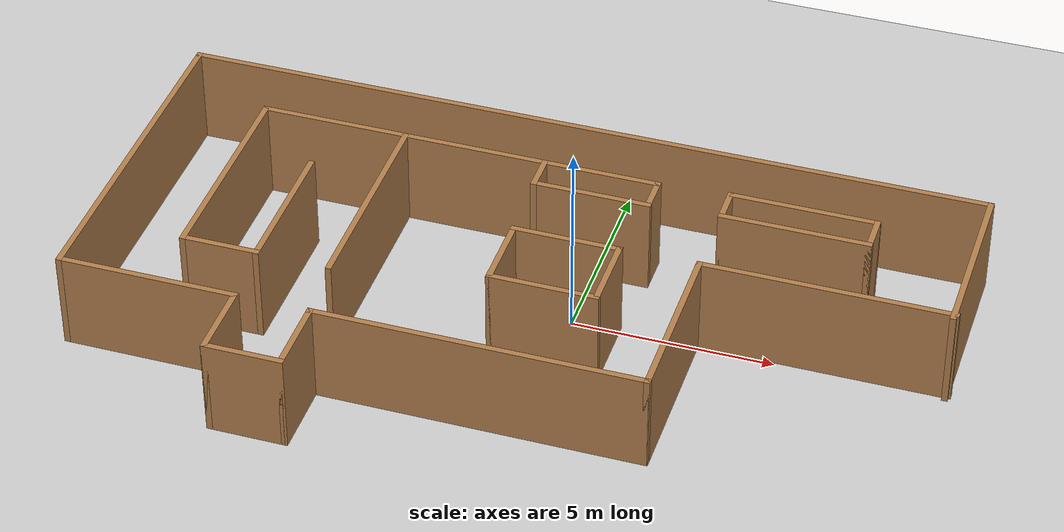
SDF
<sdf version="1.7">
 <world name="default">
  <light name="sun" type="directional">
   <pose>0 0 10 0 -0 0</pose>
   <diffuse>0.8 0.8 0.8 1</diffuse>
   <specular>0.2 0.2 0.2 1</specular>
   <attenuation>
    <range>1000</range>
    <constant>0.9</constant>
    <linear>0.01</linear>
    <quadratic>0.001</quadratic>
   </attenuation>
   <direction>-0.5 0.1 -0.9</direction>
   <spot><inner_angle>0</inner_angle><outer_angle>0</outer_angle><falloff>0</falloff></spot>
  </light>
  <model name="ground_plane">
   <static>1</static>
   <link name="link">
    <collision name="collision">
     <geometry><plane><normal>0 0 1</normal><size>100 100</size></plane></geometry>
     <surface>
      <contact><collide_bitmask>65535</collide_bitmask></contact>
      <friction><ode><mu>100</mu><mu2>50</mu2></ode></friction>
     </surface>
    </collision>
    <visual name="visual">
     <cast_shadows>0</cast_shadows>
     <geometry><plane><normal>0 0 1</normal><size>100 100</size></plane></geometry>
     <material>
      <script><uri>file://media/materials/scripts/gazebo.material</uri><name>Gazebo/Grey</name></script>
     </material>
    </visual>
   </link>
  </model>
  <gravity>0 0 -9.8</gravity>
  <magnetic_field>6e-06 2.3e-05 -4.2e-05</magnetic_field>
  <atmosphere type="adiabatic"/>
  <physics name="default_physics" default="0" type="ode">
   <max_step_size>0.001</max_step_size>
   <real_time_factor>1</real_time_factor>
   <real_time_update_rate>1000</real_time_update_rate>
  </physics>
  <scene><ambient>0.4 0.4 0.4 1</ambient><background>0.7 0.7 0.7 1</background><shadows>1</shadows></scene>
  <audio><device>default</device></audio>
  <spherical_coordinates>
   <surface_model>EARTH_WGS84</surface_model>
   <latitude_deg>0</latitude_deg>
   <longitude_deg>0</longitude_deg>
   <elevation>0</elevation>
   <heading_deg>0</heading_deg>
  </spherical_coordinates>
  <model name="dans_basic_maze">
   <pose>-1.05323 -0.832402 0 0 -0 0</pose>
   <link name="Wall_0">
    <collision name="Wall_0_Collision">
     <geometry><box><size>5.5 0.15 2.5</size></box></geometry>
     <pose>0 0 1.25 0 -0 0</pose>
    </collision>
    <visual name="Wall_0_Visual">
     <pose>0 0 1.25 0 -0 0</pose>
     <geometry><box><size>5.5 0.15 2.5</size></box></geometry>
     <material>
      <script><uri>file://media/materials/scripts/gazebo.material</uri><name>Gazebo/Wood</name></script>
      <ambient>1 1 1 1</ambient>
     </material>
     <meta><layer>0</layer></meta>
    </visual>
    <pose>-7.75378 0.921526 0 0 -0 1.5708</pose>
   </link>
   <link name="Wall_1">
    <collision name="Wall_1_Collision">
     <geometry><box><size>10.25 0.15 2.5</size></box></geometry>
     <pose>0 0 1.25 0 -0 0</pose>
    </collision>
    <visual name="Wall_1_Visual">
     <pose>0 0 1.25 0 -0 0</pose>
     <geometry><box><size>10.25 0.15 2.5</size></box></geometry>
     <material>
      <script><uri>file://media/materials/scripts/gazebo.material</uri><name>Gazebo/Wood</name></script>
      <ambient>1 1 1 1</ambient>
     </material>
     <meta><layer>0</layer></meta>
    </visual>
    <pose>-2.70378 3.59653 0 0 -0 0</pose>
   </link>
   <link name="Wall_11">
    <collision name="Wall_11_Collision">
     <geometry><box><size>5.5 0.15 2.5</size></box></geometry>
     <pose>0 0 1.25 0 -0 0</pose>
    </collision>
    <visual name="Wall_11_Visual">
     <pose>0 0 1.25 0 -0 0</pose>
     <geometry><box><size>5.5 0.15 2.5</size></box></geometry>
     <material>
      <script><uri>file://media/materials/scripts/gazebo.material</uri><name>Gazebo/Wood</name></script>
      <ambient>1 1 1 1</ambient>
     </material>
     <meta><layer>0</layer></meta>
    </visual>
    <pose>-4.08824 0.913758 0 0 -0 -1.5708</pose>
   </link>
   <link name="Wall_13">
    <collision name="Wall_13_Collision">
     <geometry><box><size>2.75 0.15 2.5</size></box></geometry>
     <pose>0 0 1.25 0 -0 0</pose>
    </collision>
    <visual name="Wall_13_Visual">
     <pose>0 0 1.25 0 -0 0</pose>
     <geometry><box><size>2.75 0.15 2.5</size></box></geometry>
     <material>
      <script><uri>file://media/materials/scripts/gazebo.material</uri><name>Gazebo/Wood</name></script>
      <ambient>1 1 1 1</ambient>
     </material>
     <meta><layer>0</layer></meta>
    </visual>
    <pose>0.866401 0.928739 0 0 -0 0</pose>
   </link>
   <link name="Wall_14">
    <collision name="Wall_14_Collision">
     <geometry><box><size>2 0.15 2.5</size></box></geometry>
     <pose>0 0 1.25 0 -0 0</pose>
    </collision>
    <visual name="Wall_14_Visual">
     <pose>0 0 1.25 0 -0 0</pose>
     <geometry><box><size>2 0.15 2.5</size></box></geometry>
     <material>
      <script><uri>file://media/materials/scripts/gazebo.material</uri><name>Gazebo/Wood</name></script>
      <ambient>1 1 1 1</ambient>
     </material>
     <meta><layer>0</layer></meta>
    </visual>
    <pose>2.1664 0.003739 0 0 -0 -1.5708</pose>
   </link>
   <link name="Wall_15">
    <collision name="Wall_15_Collision">
     <geometry><box><size>2.75 0.15 2.5</size></box></geometry>
     <pose>0 0 1.25 0 -0 0</pose>
    </collision>
    <visual name="Wall_15_Visual">
     <pose>0 0 1.25 0 -0 0</pose>
     <geometry><box><size>2.75 0.15 2.5</size></box></geometry>
     <material>
      <script><uri>file://media/materials/scripts/gazebo.material</uri><name>Gazebo/Wood</name></script>
      <ambient>1 1 1 1</ambient>
     </material>
     <meta><layer>0</layer></meta>
    </visual>
    <pose>0.866401 -0.921261 0 0 -0 3.14159</pose>
   </link>
   <link name="Wall_16">
    <collision name="Wall_16_Collision">
     <geometry><box><size>2 0.15 2.5</size></box></geometry>
     <pose>0 0 1.25 0 -0 0</pose>
    </collision>
    <visual name="Wall_16_Visual">
     <pose>0 0 1.25 0 -0 0</pose>
     <geometry><box><size>2 0.15 2.5</size></box></geometry>
     <material>
      <script><uri>file://media/materials/scripts/gazebo.material</uri><name>Gazebo/Wood</name></script>
      <ambient>1 1 1 1</ambient>
     </material>
     <meta><layer>0</layer></meta>
    </visual>
    <pose>-0.433599 0.003739 0 0 -0 1.5708</pose>
   </link>
   <link name="Wall_18">
    <collision name="Wall_18_Collision">
     <geometry><box><size>1 0.15 2.5</size></box></geometry>
     <pose>0 0 1.25 0 -0 0</pose>
    </collision>
    <visual name="Wall_18_Visual">
     <pose>0 0 1.25 0 -0 0</pose>
     <geometry><box><size>1 0.15 2.5</size></box></geometry>
     <material>
      <script><uri>file://media/materials/scripts/gazebo.material</uri><name>Gazebo/Wood</name></script>
      <ambient>1 1 1 1</ambient>
     </material>
     <meta><layer>0</layer></meta>
    </visual>
    <pose>4.12313 3.30254 0 0 -0 -1.5708</pose>
   </link>
   <link name="Wall_19">
    <collision name="Wall_19_Collision">
     <geometry><box><size>3.75 0.15 2.5</size></box></geometry>
     <pose>0 0 1.25 0 -0 0</pose>
    </collision>
    <visual name="Wall_19_Visual">
     <pose>0 0 1.25 0 -0 0</pose>
     <geometry><box><size>3.75 0.15 2.5</size></box></geometry>
     <material>
      <script><uri>file://media/materials/scripts/gazebo.material</uri><name>Gazebo/Wood</name></script>
      <ambient>1 1 1 1</ambient>
     </material>
     <meta><layer>0</layer></meta>
    </visual>
    <pose>5.92313 2.87754 0 0 -0 0</pose>
   </link>
   <link name="Wall_2">
    <collision name="Wall_2_Collision">
     <geometry><box><size>1 0.15 2.5</size></box></geometry>
     <pose>0 0 1.25 0 -0 0</pose>
    </collision>
    <visual name="Wall_2_Visual">
     <pose>0 0 1.25 0 -0 0</pose>
     <geometry><box><size>1 0.15 2.5</size></box></geometry>
     <material>
      <script><uri>file://media/materials/scripts/gazebo.material</uri><name>Gazebo/Wood</name></script>
      <ambient>1 1 1 1</ambient>
     </material>
     <meta><layer>0</layer></meta>
    </visual>
    <pose>2.34622 3.17153 0 0 -0 -1.5708</pose>
   </link>
   <link name="Wall_20">
    <collision name="Wall_20_Collision">
     <geometry><box><size>1 0.15 2.5</size></box></geometry>
     <pose>0 0 1.25 0 -0 0</pose>
    </collision>
    <visual name="Wall_20_Visual">
     <pose>0 0 1.25 0 -0 0</pose>
     <geometry><box><size>1 0.15 2.5</size></box></geometry>
     <material>
      <script><uri>file://media/materials/scripts/gazebo.material</uri><name>Gazebo/Wood</name></script>
      <ambient>1 1 1 1</ambient>
     </material>
     <meta><layer>0</layer></meta>
    </visual>
    <pose>7.72313 3.30254 0 0 -0 1.5708</pose>
   </link>
   <link name="Wall_21">
    <collision name="Wall_21_Collision">
     <geometry><box><size>3.75 0.15 2.5</size></box></geometry>
     <pose>0 0 1.25 0 -0 0</pose>
    </collision>
    <visual name="Wall_21_Visual">
     <pose>0 0 1.25 0 -0 0</pose>
     <geometry><box><size>3.75 0.15 2.5</size></box></geometry>
     <material>
      <script><uri>file://media/materials/scripts/gazebo.material</uri><name>Gazebo/Wood</name></script>
      <ambient>1 1 1 1</ambient>
     </material>
     <meta><layer>0</layer></meta>
    </visual>
    <pose>5.92313 3.72754 0 0 -0 3.14159</pose>
   </link>
   <link name="Wall_23">
    <collision name="Wall_23_Collision">
     <geometry><box><size>4.5 0.15 2.5</size></box></geometry>
     <pose>0 0 1.25 0 -0 0</pose>
    </collision>
    <visual name="Wall_23_Visual">
     <pose>0 0 1.25 0 -0 0</pose>
     <geometry><box><size>4.5 0.15 2.5</size></box></geometry>
     <material>
      <script><uri>file://media/materials/scripts/gazebo.material</uri><name>Gazebo/Wood</name></script>
      <ambient>1 1 1 1</ambient>
     </material>
     <meta><layer>0</layer></meta>
    </visual>
    <pose>4.1 -1.2 0 0 -0 -1.5708</pose>
   </link>
   <link name="Wall_3">
    <collision name="Wall_3_Collision">
     <geometry><box><size>3 0.15 2.5</size></box></geometry>
     <pose>0 0 1.25 0 -0 0</pose>
    </collision>
    <visual name="Wall_3_Visual">
     <pose>0 0 1.25 0 -0 0</pose>
     <geometry><box><size>3 0.15 2.5</size></box></geometry>
     <material>
      <script><uri>file://media/materials/scripts/gazebo.material</uri><name>Gazebo/Wood</name></script>
      <ambient>1 1 1 1</ambient>
     </material>
     <meta><layer>0</layer></meta>
    </visual>
    <pose>0.92122 2.74653 0 0 -0 3.14159</pose>
   </link>
   <link name="Wall_33">
    <collision name="Wall_33_Collision">
     <geometry><box><size>4.54626 0.15 2.5</size></box></geometry>
     <pose>0 0 1.25 0 -0 0</pose>
    </collision>
    <visual name="Wall_33_Visual">
     <pose>0 0 1.25 0 -0 0</pose>
     <geometry><box><size>4.54626 0.15 2.5</size></box></geometry>
     <material>
      <script><uri>file://media/materials/scripts/gazebo.material</uri><name>Gazebo/Wood</name></script>
      <ambient>1 1 1 1</ambient>
     </material>
     <meta><layer>0</layer></meta>
    </visual>
    <pose>-8.00187 -3.375 0 0 -0 3.14159</pose>
   </link>
   <link name="Wall_34">
    <collision name="Wall_34_Collision">
     <geometry><box><size>8.75 0.15 2.5</size></box></geometry>
     <pose>0 0 1.25 0 -0 0</pose>
    </collision>
    <visual name="Wall_34_Visual">
     <pose>0 0 1.25 0 -0 0</pose>
     <geometry><box><size>8.75 0.15 2.5</size></box></geometry>
     <material>
      <script><uri>file://media/materials/scripts/gazebo.material</uri><name>Gazebo/Wood</name></script>
      <ambient>1 1 1 1</ambient>
     </material>
     <meta><layer>0</layer></meta>
    </visual>
    <pose>-10.2 0.925 0 0 -0 1.5708</pose>
   </link>
   <link name="Wall_35">
    <collision name="Wall_35_Collision">
     <geometry><box><size>20.5 0.15 2.5</size></box></geometry>
     <pose>0 0 1.25 0 -0 0</pose>
    </collision>
    <visual name="Wall_35_Visual">
     <pose>0 0 1.25 0 -0 0</pose>
     <geometry><box><size>20.5 0.15 2.5</size></box></geometry>
     <material>
      <script><uri>file://media/materials/scripts/gazebo.material</uri><name>Gazebo/Wood</name></script>
      <ambient>1 1 1 1</ambient>
     </material>
     <meta><layer>0</layer></meta>
    </visual>
    <pose>-0.025 5.225 0 0 -0 0</pose>
   </link>
   <link name="Wall_36">
    <collision name="Wall_36_Collision">
     <geometry><box><size>4.5 0.15 2.5</size></box></geometry>
     <pose>0 0 1.25 0 -0 0</pose>
    </collision>
    <visual name="Wall_36_Visual">
     <pose>0 0 1.25 0 -0 0</pose>
     <geometry><box><size>4.5 0.15 2.5</size></box></geometry>
     <material>
      <script><uri>file://media/materials/scripts/gazebo.material</uri><name>Gazebo/Wood</name></script>
      <ambient>1 1 1 1</ambient>
     </material>
     <meta><layer>0</layer></meta>
    </visual>
    <pose>10.15 3.05 0 0 -0 -1.5708</pose>
   </link>
   <link name="Wall_38">
    <collision name="Wall_38_Collision">
     <geometry><box><size>6.25 0.15 2.5</size></box></geometry>
     <pose>0 0 1.25 0 -0 0</pose>
    </collision>
    <visual name="Wall_38_Visual">
     <pose>0 0 1.25 0 -0 0</pose>
     <geometry><box><size>6.25 0.15 2.5</size></box></geometry>
     <material>
      <script><uri>file://media/materials/scripts/gazebo.material</uri><name>Gazebo/Wood</name></script>
      <ambient>1 1 1 1</ambient>
     </material>
     <meta><layer>0</layer></meta>
    </visual>
    <pose>7.15 0.975 0 0 -0 0</pose>
   </link>
   <link name="Wall_40">
    <collision name="Wall_40_Collision">
     <geometry><box><size>2 0.15 2.5</size></box></geometry>
     <pose>0 0 1.25 0 -0 0</pose>
    </collision>
    <visual name="Wall_40_Visual">
     <pose>0 0 1.25 0 -0 0</pose>
     <geometry><box><size>2 0.15 2.5</size></box></geometry>
     <material>
      <script><uri>file://media/materials/scripts/gazebo.material</uri><name>Gazebo/Wood</name></script>
      <ambient>1 1 1 1</ambient>
     </material>
     <meta><layer>0</layer></meta>
    </visual>
    <pose>-6.82878 -1.75347 0 0 -0 0</pose>
   </link>
   <link name="Wall_41">
    <collision name="Wall_41_Collision">
     <geometry><box><size>3.75 0.15 2.5</size></box></geometry>
     <pose>0 0 1.25 0 -0 0</pose>
    </collision>
    <visual name="Wall_41_Visual">
     <pose>0 0 1.25 0 -0 0</pose>
     <geometry><box><size>3.75 0.15 2.5</size></box></geometry>
     <material>
      <script><uri>file://media/materials/scripts/gazebo.material</uri><name>Gazebo/Wood</name></script>
      <ambient>1 1 1 1</ambient>
     </material>
     <meta><layer>0</layer></meta>
    </visual>
    <pose>-5.90378 0.046526 0 0 -0 1.5708</pose>
   </link>
   <link name="Wall_43">
    <collision name="Wall_43_Collision">
     <geometry><box><size>2 0.15 2.5</size></box></geometry>
     <pose>0 0 1.25 0 -0 0</pose>
    </collision>
    <visual name="Wall_43_Visual">
     <pose>0 0 1.25 0 -0 0</pose>
     <geometry><box><size>2 0.15 2.5</size></box></geometry>
     <material>
      <script><uri>file://media/materials/scripts/gazebo.material</uri><name>Gazebo/Wood</name></script>
      <ambient>1 1 1 1</ambient>
     </material>
     <meta><layer>0</layer></meta>
    </visual>
    <pose>-5.80374 -4.3 0 0 -0 -1.5708</pose>
   </link>
   <link name="Wall_44">
    <collision name="Wall_44_Collision">
     <geometry><box><size>2 0.15 2.5</size></box></geometry>
     <pose>0 0 1.25 0 -0 0</pose>
    </collision>
    <visual name="Wall_44_Visual">
     <pose>0 0 1.25 0 -0 0</pose>
     <geometry><box><size>2 0.15 2.5</size></box></geometry>
     <material>
      <script><uri>file://media/materials/scripts/gazebo.material</uri><name>Gazebo/Wood</name></script>
      <ambient>1 1 1 1</ambient>
     </material>
     <meta><layer>0</layer></meta>
    </visual>
    <pose>-4.87874 -5.225 0 0 -0 0</pose>
   </link>
   <link name="Wall_45">
    <collision name="Wall_45_Collision">
     <geometry><box><size>2 0.15 2.5</size></box></geometry>
     <pose>0 0 1.25 0 -0 0</pose>
    </collision>
    <visual name="Wall_45_Visual">
     <pose>0 0 1.25 0 -0 0</pose>
     <geometry><box><size>2 0.15 2.5</size></box></geometry>
     <material>
      <script><uri>file://media/materials/scripts/gazebo.material</uri><name>Gazebo/Wood</name></script>
      <ambient>1 1 1 1</ambient>
     </material>
     <meta><layer>0</layer></meta>
    </visual>
    <pose>-3.95374 -4.3 0 0 -0 1.5708</pose>
   </link>
   <link name="Wall_46">
    <collision name="Wall_46_Collision">
     <geometry><box><size>8.20374 0.15 2.5</size></box></geometry>
     <pose>0 0 1.25 0 -0 0</pose>
    </collision>
    <visual name="Wall_46_Visual">
     <pose>0 0 1.25 0 -0 0</pose>
     <geometry><box><size>8.20374 0.15 2.5</size></box></geometry>
     <material>
      <script><uri>file://media/materials/scripts/gazebo.material</uri><name>Gazebo/Wood</name></script>
      <ambient>1 1 1 1</ambient>
     </material>
     <meta><layer>0</layer></meta>
    </visual>
    <pose>0.073131 -3.375 0 0 -0 0</pose>
   </link>
   <link name="Wall_6">
    <collision name="Wall_6_Collision">
     <geometry><box><size>1 0.15 2.5</size></box></geometry>
     <pose>0 0 1.25 0 -0 0</pose>
    </collision>
    <visual name="Wall_6_Visual">
     <pose>0 0 1.25 0 -0 0</pose>
     <geometry><box><size>1 0.15 2.5</size></box></geometry>
     <material>
      <script><uri>file://media/materials/scripts/gazebo.material</uri><name>Gazebo/Wood</name></script>
      <ambient>1 1 1 1</ambient>
     </material>
     <meta><layer>0</layer></meta>
    </visual>
    <pose>-0.50378 3.17153 0 0 -0 1.5708</pose>
   </link>
   <static>1</static>
  </model>
  <model name="pillar_dans_maze_final">
   <link name="link_0">
    <inertial>
     <mass>1</mass>
     <inertia><ixx>0.145833</ixx><ixy>0</ixy><ixz>0</ixz><iyy>0.145833</iyy><iyz>0</iyz><izz>0.125</izz></inertia>
    </inertial>
    <pose>7.65049 0.851072 0 0 -0 0</pose>
    <visual name="visual">
     <geometry><cylinder><radius>0.15</radius><length>1</length></cylinder></geometry>
     <material>
      <lighting>1</lighting>
      <script><uri>file://media/materials/scripts/gazebo.material</uri><name>Gazebo/Grey</name></script>
      <shader type="pixel"><normal_map>__default__</normal_map></shader>
      <ambient>0.3 0.3 0.3 1</ambient>
      <diffuse>0.7 0.7 0.7 1</diffuse>
      <specular>0.01 0.01 0.01 1</specular>
      <emissive>0 0 0 1</emissive>
     </material>
    </visual>
    <collision name="collision">
     <geometry><cylinder><radius>0.15</radius><length>1</length></cylinder></geometry>
     <surface>
      <friction>
       <ode><mu>1</mu><mu2>1</mu2><fdir1>0 0 0</fdir1><slip1>0</slip1><slip2>0</slip2></ode>
       <torsional>
        <coefficient>1</coefficient>
        <patch_radius>0</patch_radius>
        <surface_radius>0</surface_radius>
        <use_patch_radius>1</use_patch_radius>
        <ode><slip>0</slip></ode>
       </torsional>
      </friction>
      <bounce><restitution_coefficient>0</restitution_coefficient><threshold>1e+06</threshold></bounce>
      <contact>
       <collide_without_contact>0</collide_without_contact>
       <collide_without_contact_bitmask>1</collide_without_contact_bitmask>
       <collide_bitmask>1</collide_bitmask>
       <ode>
        <soft_cfm>0</soft_cfm>
        <soft_erp>0.2</soft_erp>
        <kp>1e+13</kp>
        <kd>1</kd>
        <max_vel>0.01</max_vel>
        <min_depth>0</min_depth>
       </ode>
       <bullet>
        <split_impulse>1</split_impulse>
        <split_impulse_penetration_threshold>-0.01</split_impulse_penetration_threshold>
        <soft_cfm>0</soft_cfm>
        <soft_erp>0.2</soft_erp>
        <kp>1e+13</kp>
        <kd>1</kd>
       </bullet>
      </contact>
     </surface>
    </collision>
   </link>
   <link name="link_1">
    <inertial>
     <mass>1</mass>
     <inertia><ixx>0.145833</ixx><ixy>0</ixy><ixz>0</ixz><iyy>0.145833</iyy><iyz>0</iyz><izz>0.125</izz></inertia>
    </inertial>
    <pose>1.09733 0.72055 0 0 -0 0</pose>
    <visual name="visual">
     <geometry><cylinder><radius>0.15</radius><length>1</length></cylinder></geometry>
     <material>
      <lighting>1</lighting>
      <script><uri>file://media/materials/scripts/gazebo.material</uri><name>Gazebo/Grey</name></script>
      <shader type="pixel"><normal_map>__default__</normal_map></shader>
      <ambient>0.3 0.3 0.3 1</ambient>
      <diffuse>0.7 0.7 0.7 1</diffuse>
      <specular>0.01 0.01 0.01 1</specular>
      <emissive>0 0 0 1</emissive>
     </material>
    </visual>
    <collision name="collision">
     <geometry><cylinder><radius>0.15</radius><length>1</length></cylinder></geometry>
     <surface>
      <friction>
       <ode><mu>1</mu><mu2>1</mu2><fdir1>0 0 0</fdir1><slip1>0</slip1><slip2>0</slip2></ode>
       <torsional>
        <coefficient>1</coefficient>
        <patch_radius>0</patch_radius>
        <surface_radius>0</surface_radius>
        <use_patch_radius>1</use_patch_radius>
        <ode><slip>0</slip></ode>
       </torsional>
      </friction>
      <bounce><restitution_coefficient>0</restitution_coefficient><threshold>1e+06</threshold></bounce>
      <contact>
       <collide_without_contact>0</collide_without_contact>
       <collide_without_contact_bitmask>1</collide_without_contact_bitmask>
       <collide_bitmask>1</collide_bitmask>
       <ode>
        <soft_cfm>0</soft_cfm>
        <soft_erp>0.2</soft_erp>
        <kp>1e+13</kp>
        <kd>1</kd>
        <max_vel>0.01</max_vel>
        <min_depth>0</min_depth>
       </ode>
       <bullet>
        <split_impulse>1</split_impulse>
        <split_impulse_penetration_threshold>-0.01</split_impulse_penetration_threshold>
        <soft_cfm>0</soft_cfm>
        <soft_erp>0.2</soft_erp>
        <kp>1e+13</kp>
        <kd>1</kd>
       </bullet>
      </contact>
     </surface>
    </collision>
   </link>
   <link name="link_2">
    <inertial>
     <mass>1</mass>
     <inertia><ixx>0.145833</ixx><ixy>0</ixy><ixz>0</ixz><iyy>0.145833</iyy><iyz>0</iyz><izz>0.125</izz></inertia>
    </inertial>
    <pose>-2.36197 0.720319 0 0 -0 0</pose>
    <visual name="visual">
     <geometry><cylinder><radius>0.15</radius><length>1</length></cylinder></geometry>
     <material>
      <lighting>1</lighting>
      <script><uri>file://media/materials/scripts/gazebo.material</uri><name>Gazebo/Grey</name></script>
      <shader type="pixel"><normal_map>__default__</normal_map></shader>
      <ambient>0.3 0.3 0.3 1</ambient>
      <diffuse>0.7 0.7 0.7 1</diffuse>
      <specular>0.01 0.01 0.01 1</specular>
      <emissive>0 0 0 1</emissive>
     </material>
    </visual>
    <collision name="collision">
     <geometry><cylinder><radius>0.15</radius><length>1</length></cylinder></geometry>
     <surface>
      <friction>
       <ode><mu>1</mu><mu2>1</mu2><fdir1>0 0 0</fdir1><slip1>0</slip1><slip2>0</slip2></ode>
       <torsional>
        <coefficient>1</coefficient>
        <patch_radius>0</patch_radius>
        <surface_radius>0</surface_radius>
        <use_patch_radius>1</use_patch_radius>
        <ode><slip>0</slip></ode>
       </torsional>
      </friction>
      <bounce><restitution_coefficient>0</restitution_coefficient><threshold>1e+06</threshold></bounce>
      <contact>
       <collide_without_contact>0</collide_without_contact>
       <collide_without_contact_bitmask>1</collide_without_contact_bitmask>
       <collide_bitmask>1</collide_bitmask>
       <ode>
        <soft_cfm>0</soft_cfm>
        <soft_erp>0.2</soft_erp>
        <kp>1e+13</kp>
        <kd>1</kd>
        <max_vel>0.01</max_vel>
        <min_depth>0</min_depth>
       </ode>
       <bullet>
        <split_impulse>1</split_impulse>
        <split_impulse_penetration_threshold>-0.01</split_impulse_penetration_threshold>
        <soft_cfm>0</soft_cfm>
        <soft_erp>0.2</soft_erp>
        <kp>1e+13</kp>
        <kd>1</kd>
       </bullet>
      </contact>
     </surface>
    </collision>
   </link>
   <link name="link_3">
    <inertial>
     <mass>1</mass>
     <inertia><ixx>0.145833</ixx><ixy>0</ixy><ixz>0</ixz><iyy>0.145833</iyy><iyz>0</iyz><izz>0.125</izz></inertia>
    </inertial>
    <pose>-6.38586 -2.29195 0 0 -0 0</pose>
    <visual name="visual">
     <geometry><cylinder><radius>0.15</radius><length>1</length></cylinder></geometry>
     <material>
      <lighting>1</lighting>
      <script><uri>file://media/materials/scripts/gazebo.material</uri><name>Gazebo/Grey</name></script>
      <shader type="pixel"><normal_map>__default__</normal_map></shader>
      <ambient>0.3 0.3 0.3 1</ambient>
      <diffuse>0.7 0.7 0.7 1</diffuse>
      <specular>0.01 0.01 0.01 1</specular>
      <emissive>0 0 0 1</emissive>
     </material>
    </visual>
    <collision name="collision">
     <geometry><cylinder><radius>0.15</radius><length>1</length></cylinder></geometry>
     <surface>
      <friction>
       <ode><mu>1</mu><mu2>1</mu2><fdir1>0 0 0</fdir1><slip1>0</slip1><slip2>0</slip2></ode>
       <torsional>
        <coefficient>1</coefficient>
        <patch_radius>0</patch_radius>
        <surface_radius>0</surface_radius>
        <use_patch_radius>1</use_patch_radius>
        <ode><slip>0</slip></ode>
       </torsional>
      </friction>
      <bounce><restitution_coefficient>0</restitution_coefficient><threshold>1e+06</threshold></bounce>
      <contact>
       <collide_without_contact>0</collide_without_contact>
       <collide_without_contact_bitmask>1</collide_without_contact_bitmask>
       <collide_bitmask>1</collide_bitmask>
       <ode>
        <soft_cfm>0</soft_cfm>
        <soft_erp>0.2</soft_erp>
        <kp>1e+13</kp>
        <kd>1</kd>
        <max_vel>0.01</max_vel>
        <min_depth>0</min_depth>
       </ode>
       <bullet>
        <split_impulse>1</split_impulse>
        <split_impulse_penetration_threshold>-0.01</split_impulse_penetration_threshold>
        <soft_cfm>0</soft_cfm>
        <soft_erp>0.2</soft_erp>
        <kp>1e+13</kp>
        <kd>1</kd>
       </bullet>
      </contact>
     </surface>
    </collision>
   </link>
   <static>0</static>
   <pose>-2.65731 2.27656 0.5 0 -0 0</pose>
  </model>
 </world>
</sdf>
